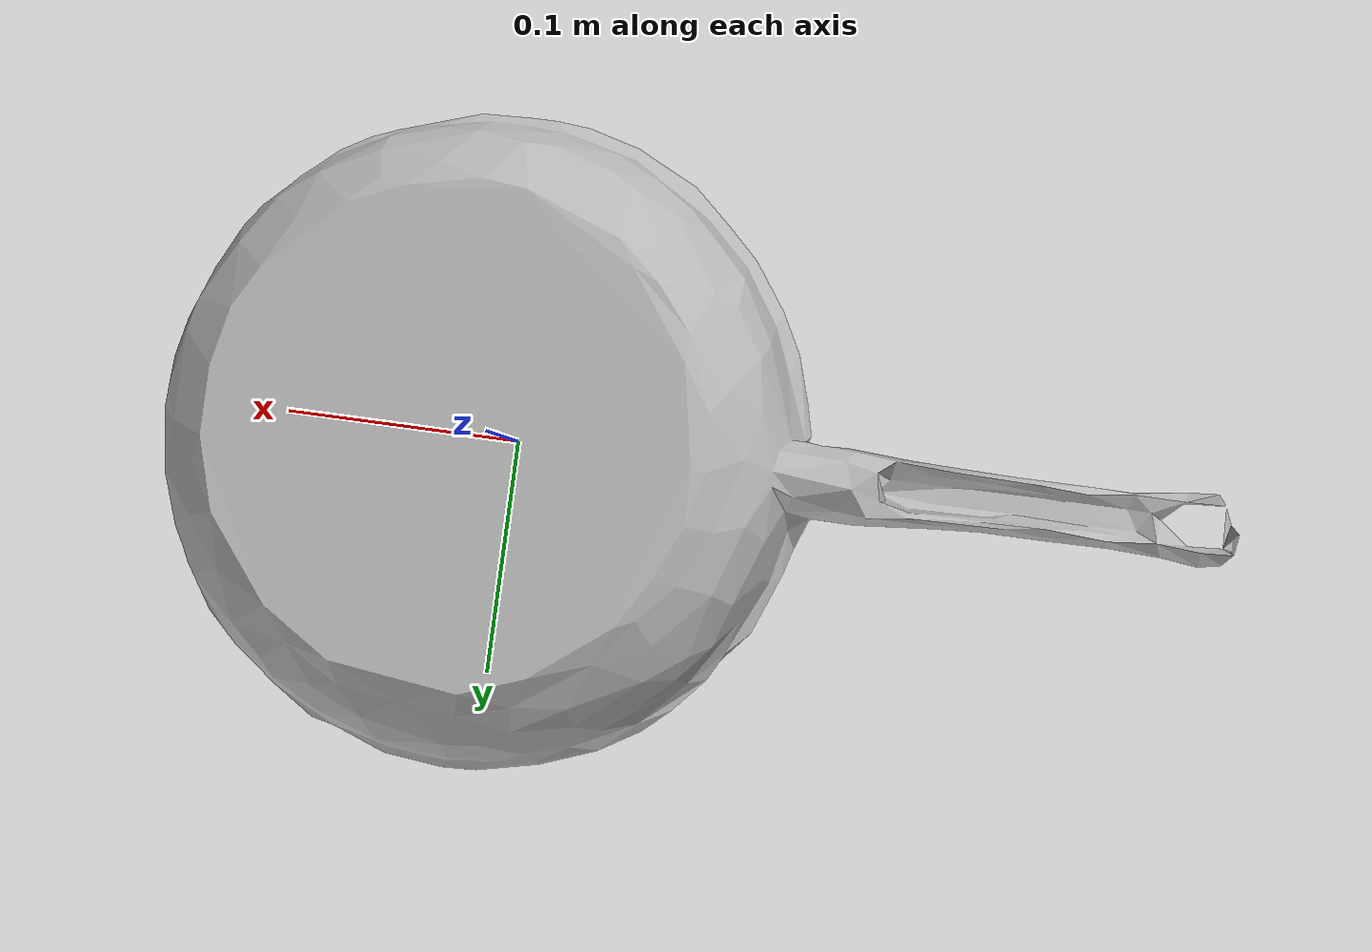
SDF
<?xml version='1.0'?>
<sdf version='1.6'>
    <model name='frying_pan'>
        <pose>0 0 0 0 0 0</pose>
        <link name='link'>
            <collision name='collision'>
                <geometry>
                    <mesh>
                        <uri>model://frying_pan/model.dae</uri>
                    </mesh>
                </geometry>
            </collision>
            <visual name='visual'>
                <geometry>
                    <mesh>
                        <uri>model://frying_pan/model.dae</uri>
                    </mesh>
                </geometry>

            </visual>
        </link>
    </model>
</sdf>
